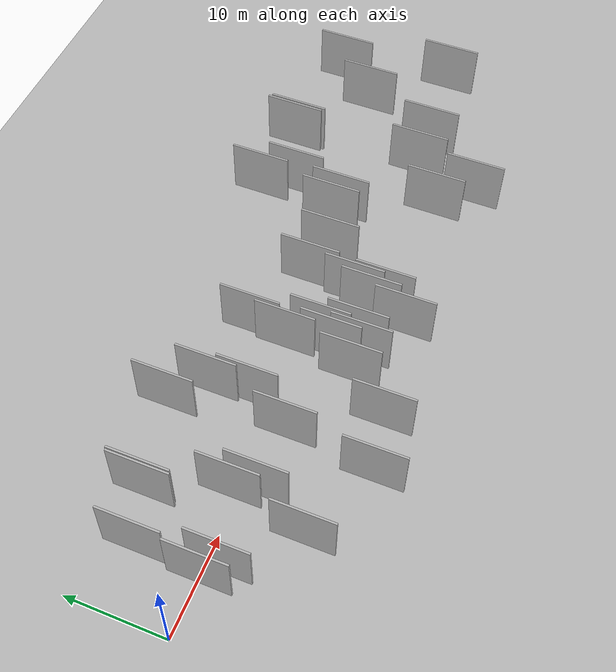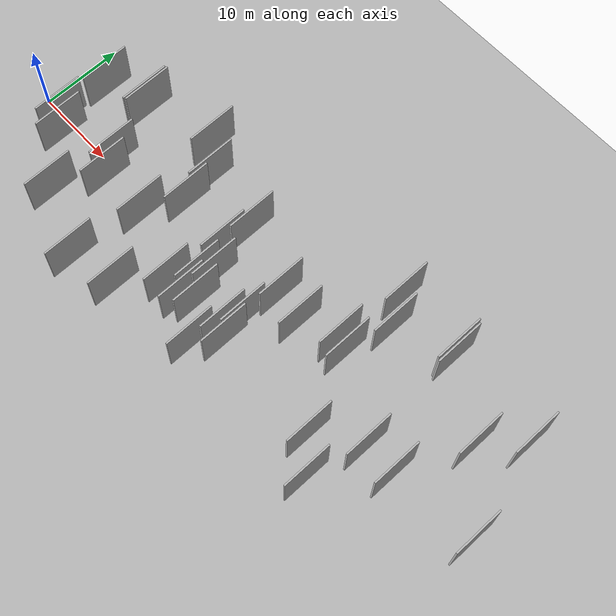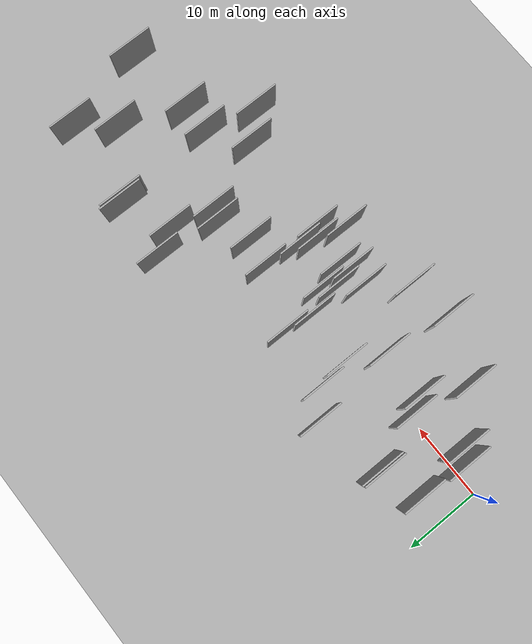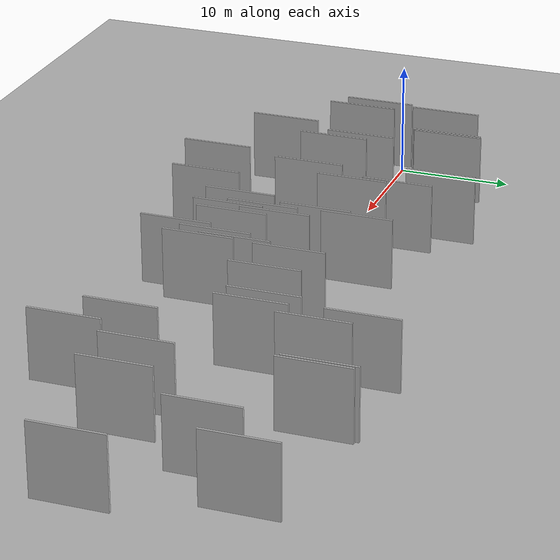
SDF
<?xml version="1.0" encoding="utf-8"?>

<sdf version="1.6">

   <world name="default">

      <gui fullscreen="0">

         <camera name="user_camera">

            <pose>-15 0 4.57585 0 0 0</pose>

            <view_controller>orbit</view_controller>

         </camera>

      </gui>

      <scene>

         <sky>

           <clouds>

             <speed>12</speed>

           </clouds>

         </sky>

         <ambient>0.4 0.4 0.4 1</ambient>

         <background>0.7 0.7 0.7 1</background>

         <shadows>1</shadows>

      </scene>

      <gravity>0 0 -9.8066</gravity>

      <magnetic_field>6e-06 2.3e-05 -4.2e-05</magnetic_field>

      <physics default="0" name="default_physics" type="ode">

         <ode>

            <solver>

               <type>quick</type>

               <iters>10</iters>

               <sor>1.0</sor>

               <use_dynamic_moi_rescaling>0</use_dynamic_moi_rescaling>

            </solver>

            <constraints>

               <cfm>0</cfm>

               <erp>0.2</erp>

               <contact_max_correcting_vel>100</contact_max_correcting_vel>

               <contact_surface_layer>0.001</contact_surface_layer>

            </constraints>

         </ode>

         <max_step_size>0.004</max_step_size>

         <real_time_factor>1</real_time_factor>

         <real_time_update_rate>250</real_time_update_rate>

      </physics>

      <light name="sun" type="directional">

         <cast_shadows>1</cast_shadows>

         <pose>0 0 10 0 0 0</pose>

         <diffuse>0.8 0.8 0.8 1</diffuse>

         <specular>0.2 0.2 0.2 1</specular>

         <attenuation>

            <range>1000</range>

            <constant>0.9</constant>

            <linear>0.01</linear>

            <quadratic>0.001</quadratic>

         </attenuation>

         <direction>-0.5 0.1 -0.9</direction>

      </light>

      <include>

         <name>ground_plane_1</name>

         <uri>model://HANNAS_ground_plane</uri>

         <pose>0 0 0  0 0 0</pose>

      </include>

      <include>

         <name>ground_plane_2</name>

         <uri>model://HANNAS_ground_plane</uri>

         <pose>100 0 0  0 0 0</pose>

      </include>

      <model name="HANNAS_wall_1">

         <static>1</static>

         <pose frame="">62.6837 5.5342 2.5 0.000000 0.000000 1.570796</pose>

         <link name="link">

            <pose frame="">0 0 3.00 0 0 0</pose>

            <collision name="collision">

               <geometry>

                  <box>

                     <size>6.00 0.2 6.00</size>

                  </box>

               </geometry>

               <max_contacts>10</max_contacts>

               <surface>

                  <contact>

                     <ode/>

                  </contact>

                  <bounce/>

                  <friction>

                     <torsional>

                        <ode/>

                     </torsional>

                     <ode/>

                  </friction>

               </surface>

            </collision>

            <visual name="visual">

               <cast_shadows>0</cast_shadows>

               <geometry>

                  <box>

                     <size>6.00 0.2 6.00</size>

                  </box>

               </geometry>

               <material>

                  <script>

                     <uri>model://HANNAS_wall/materials/scripts</uri>

                     <uri>model://HANNAS_wall/materials/textures</uri>

                     <name>vrc/HANNAS_wall</name>

                  </script>

               </material>

            </visual>

            <self_collide>0</self_collide>

            <enable_wind>0</enable_wind>

            <kinematic>0</kinematic>

         </link>

      </model>

      <model name="HANNAS_wall_2">

         <static>1</static>

         <pose frame="">11.1734 -7.3490 2.5 0.000000 0.000000 1.570796</pose>

         <link name="link">

            <pose frame="">0 0 3.00 0 0 0</pose>

            <collision name="collision">

               <geometry>

                  <box>

                     <size>6.00 0.2 6.00</size>

                  </box>

               </geometry>

               <max_contacts>10</max_contacts>

               <surface>

                  <contact>

                     <ode/>

                  </contact>

                  <bounce/>

                  <friction>

                     <torsional>

                        <ode/>

                     </torsional>

                     <ode/>

                  </friction>

               </surface>

            </collision>

            <visual name="visual">

               <cast_shadows>0</cast_shadows>

               <geometry>

                  <box>

                     <size>6.00 0.2 6.00</size>

                  </box>

               </geometry>

               <material>

                  <script>

                     <uri>model://HANNAS_wall/materials/scripts</uri>

                     <uri>model://HANNAS_wall/materials/textures</uri>

                     <name>vrc/HANNAS_wall</name>

                  </script>

               </material>

            </visual>

            <self_collide>0</self_collide>

            <enable_wind>0</enable_wind>

            <kinematic>0</kinematic>

         </link>

      </model>

      <model name="HANNAS_wall_3">

         <static>1</static>

         <pose frame="">29.5694 5.4243 2.5 0.000000 0.000000 1.570796</pose>

         <link name="link">

            <pose frame="">0 0 3.00 0 0 0</pose>

            <collision name="collision">

               <geometry>

                  <box>

                     <size>6.00 0.2 6.00</size>

                  </box>

               </geometry>

               <max_contacts>10</max_contacts>

               <surface>

                  <contact>

                     <ode/>

                  </contact>

                  <bounce/>

                  <friction>

                     <torsional>

                        <ode/>

                     </torsional>

                     <ode/>

                  </friction>

               </surface>

            </collision>

            <visual name="visual">

               <cast_shadows>0</cast_shadows>

               <geometry>

                  <box>

                     <size>6.00 0.2 6.00</size>

                  </box>

               </geometry>

               <material>

                  <script>

                     <uri>model://HANNAS_wall/materials/scripts</uri>

                     <uri>model://HANNAS_wall/materials/textures</uri>

                     <name>vrc/HANNAS_wall</name>

                  </script>

               </material>

            </visual>

            <self_collide>0</self_collide>

            <enable_wind>0</enable_wind>

            <kinematic>0</kinematic>

         </link>

      </model>

      <model name="HANNAS_wall_4">

         <static>1</static>

         <pose frame="">28.0579 -5.1532 2.5 0.000000 0.000000 1.570796</pose>

         <link name="link">

            <pose frame="">0 0 3.00 0 0 0</pose>

            <collision name="collision">

               <geometry>

                  <box>

                     <size>6.00 0.2 6.00</size>

                  </box>

               </geometry>

               <max_contacts>10</max_contacts>

               <surface>

                  <contact>

                     <ode/>

                  </contact>

                  <bounce/>

                  <friction>

                     <torsional>

                        <ode/>

                     </torsional>

                     <ode/>

                  </friction>

               </surface>

            </collision>

            <visual name="visual">

               <cast_shadows>0</cast_shadows>

               <geometry>

                  <box>

                     <size>6.00 0.2 6.00</size>

                  </box>

               </geometry>

               <material>

                  <script>

                     <uri>model://HANNAS_wall/materials/scripts</uri>

                     <uri>model://HANNAS_wall/materials/textures</uri>

                     <name>vrc/HANNAS_wall</name>

                  </script>

               </material>

            </visual>

            <self_collide>0</self_collide>

            <enable_wind>0</enable_wind>

            <kinematic>0</kinematic>

         </link>

      </model>

      <model name="HANNAS_wall_5">

         <static>1</static>

         <pose frame="">10.0824 7.1214 2.5 0.000000 0.000000 1.570796</pose>

         <link name="link">

            <pose frame="">0 0 3.00 0 0 0</pose>

            <collision name="collision">

               <geometry>

                  <box>

                     <size>6.00 0.2 6.00</size>

                  </box>

               </geometry>

               <max_contacts>10</max_contacts>

               <surface>

                  <contact>

                     <ode/>

                  </contact>

                  <bounce/>

                  <friction>

                     <torsional>

                        <ode/>

                     </torsional>

                     <ode/>

                  </friction>

               </surface>

            </collision>

            <visual name="visual">

               <cast_shadows>0</cast_shadows>

               <geometry>

                  <box>

                     <size>6.00 0.2 6.00</size>

                  </box>

               </geometry>

               <material>

                  <script>

                     <uri>model://HANNAS_wall/materials/scripts</uri>

                     <uri>model://HANNAS_wall/materials/textures</uri>

                     <name>vrc/HANNAS_wall</name>

                  </script>

               </material>

            </visual>

            <self_collide>0</self_collide>

            <enable_wind>0</enable_wind>

            <kinematic>0</kinematic>

         </link>

      </model>

      <model name="HANNAS_wall_6">

         <static>1</static>

         <pose frame="">37.2895 2.4847 2.5 0.000000 0.000000 1.570796</pose>

         <link name="link">

            <pose frame="">0 0 3.00 0 0 0</pose>

            <collision name="collision">

               <geometry>

                  <box>

                     <size>6.00 0.2 6.00</size>

                  </box>

               </geometry>

               <max_contacts>10</max_contacts>

               <surface>

                  <contact>

                     <ode/>

                  </contact>

                  <bounce/>

                  <friction>

                     <torsional>

                        <ode/>

                     </torsional>

                     <ode/>

                  </friction>

               </surface>

            </collision>

            <visual name="visual">

               <cast_shadows>0</cast_shadows>

               <geometry>

                  <box>

                     <size>6.00 0.2 6.00</size>

                  </box>

               </geometry>

               <material>

                  <script>

                     <uri>model://HANNAS_wall/materials/scripts</uri>

                     <uri>model://HANNAS_wall/materials/textures</uri>

                     <name>vrc/HANNAS_wall</name>

                  </script>

               </material>

            </visual>

            <self_collide>0</self_collide>

            <enable_wind>0</enable_wind>

            <kinematic>0</kinematic>

         </link>

      </model>

      <model name="HANNAS_wall_7">

         <static>1</static>

         <pose frame="">6.1963 -1.9086 2.5 0.000000 0.000000 1.570796</pose>

         <link name="link">

            <pose frame="">0 0 3.00 0 0 0</pose>

            <collision name="collision">

               <geometry>

                  <box>

                     <size>6.00 0.2 6.00</size>

                  </box>

               </geometry>

               <max_contacts>10</max_contacts>

               <surface>

                  <contact>

                     <ode/>

                  </contact>

                  <bounce/>

                  <friction>

                     <torsional>

                        <ode/>

                     </torsional>

                     <ode/>

                  </friction>

               </surface>

            </collision>

            <visual name="visual">

               <cast_shadows>0</cast_shadows>

               <geometry>

                  <box>

                     <size>6.00 0.2 6.00</size>

                  </box>

               </geometry>

               <material>

                  <script>

                     <uri>model://HANNAS_wall/materials/scripts</uri>

                     <uri>model://HANNAS_wall/materials/textures</uri>

                     <name>vrc/HANNAS_wall</name>

                  </script>

               </material>

            </visual>

            <self_collide>0</self_collide>

            <enable_wind>0</enable_wind>

            <kinematic>0</kinematic>

         </link>

      </model>

      <model name="HANNAS_wall_8">

         <static>1</static>

         <pose frame="">59.2229 -2.5464 2.5 0.000000 0.000000 1.570796</pose>

         <link name="link">

            <pose frame="">0 0 3.00 0 0 0</pose>

            <collision name="collision">

               <geometry>

                  <box>

                     <size>6.00 0.2 6.00</size>

                  </box>

               </geometry>

               <max_contacts>10</max_contacts>

               <surface>

                  <contact>

                     <ode/>

                  </contact>

                  <bounce/>

                  <friction>

                     <torsional>

                        <ode/>

                     </torsional>

                     <ode/>

                  </friction>

               </surface>

            </collision>

            <visual name="visual">

               <cast_shadows>0</cast_shadows>

               <geometry>

                  <box>

                     <size>6.00 0.2 6.00</size>

                  </box>

               </geometry>

               <material>

                  <script>

                     <uri>model://HANNAS_wall/materials/scripts</uri>

                     <uri>model://HANNAS_wall/materials/textures</uri>

                     <name>vrc/HANNAS_wall</name>

                  </script>

               </material>

            </visual>

            <self_collide>0</self_collide>

            <enable_wind>0</enable_wind>

            <kinematic>0</kinematic>

         </link>

      </model>

      <model name="HANNAS_wall_9">

         <static>1</static>

         <pose frame="">30.5325 -5.2615 2.5 0.000000 0.000000 1.570796</pose>

         <link name="link">

            <pose frame="">0 0 3.00 0 0 0</pose>

            <collision name="collision">

               <geometry>

                  <box>

                     <size>6.00 0.2 6.00</size>

                  </box>

               </geometry>

               <max_contacts>10</max_contacts>

               <surface>

                  <contact>

                     <ode/>

                  </contact>

                  <bounce/>

                  <friction>

                     <torsional>

                        <ode/>

                     </torsional>

                     <ode/>

                  </friction>

               </surface>

            </collision>

            <visual name="visual">

               <cast_shadows>0</cast_shadows>

               <geometry>

                  <box>

                     <size>6.00 0.2 6.00</size>

                  </box>

               </geometry>

               <material>

                  <script>

                     <uri>model://HANNAS_wall/materials/scripts</uri>

                     <uri>model://HANNAS_wall/materials/textures</uri>

                     <name>vrc/HANNAS_wall</name>

                  </script>

               </material>

            </visual>

            <self_collide>0</self_collide>

            <enable_wind>0</enable_wind>

            <kinematic>0</kinematic>

         </link>

      </model>

      <model name="HANNAS_wall_10">

         <static>1</static>

         <pose frame="">18.9515 9.2021 2.5 0.000000 0.000000 1.570796</pose>

         <link name="link">

            <pose frame="">0 0 3.00 0 0 0</pose>

            <collision name="collision">

               <geometry>

                  <box>

                     <size>6.00 0.2 6.00</size>

                  </box>

               </geometry>

               <max_contacts>10</max_contacts>

               <surface>

                  <contact>

                     <ode/>

                  </contact>

                  <bounce/>

                  <friction>

                     <torsional>

                        <ode/>

                     </torsional>

                     <ode/>

                  </friction>

               </surface>

            </collision>

            <visual name="visual">

               <cast_shadows>0</cast_shadows>

               <geometry>

                  <box>

                     <size>6.00 0.2 6.00</size>

                  </box>

               </geometry>

               <material>

                  <script>

                     <uri>model://HANNAS_wall/materials/scripts</uri>

                     <uri>model://HANNAS_wall/materials/textures</uri>

                     <name>vrc/HANNAS_wall</name>

                  </script>

               </material>

            </visual>

            <self_collide>0</self_collide>

            <enable_wind>0</enable_wind>

            <kinematic>0</kinematic>

         </link>

      </model>

      <model name="HANNAS_wall_11">

         <static>1</static>

         <pose frame="">5.1403 5.5051 2.5 0.000000 0.000000 1.570796</pose>

         <link name="link">

            <pose frame="">0 0 3.00 0 0 0</pose>

            <collision name="collision">

               <geometry>

                  <box>

                     <size>6.00 0.2 6.00</size>

                  </box>

               </geometry>

               <max_contacts>10</max_contacts>

               <surface>

                  <contact>

                     <ode/>

                  </contact>

                  <bounce/>

                  <friction>

                     <torsional>

                        <ode/>

                     </torsional>

                     <ode/>

                  </friction>

               </surface>

            </collision>

            <visual name="visual">

               <cast_shadows>0</cast_shadows>

               <geometry>

                  <box>

                     <size>6.00 0.2 6.00</size>

                  </box>

               </geometry>

               <material>

                  <script>

                     <uri>model://HANNAS_wall/materials/scripts</uri>

                     <uri>model://HANNAS_wall/materials/textures</uri>

                     <name>vrc/HANNAS_wall</name>

                  </script>

               </material>

            </visual>

            <self_collide>0</self_collide>

            <enable_wind>0</enable_wind>

            <kinematic>0</kinematic>

         </link>

      </model>

      <model name="HANNAS_wall_12">

         <static>1</static>

         <pose frame="">22.3314 2.5402 2.5 0.000000 0.000000 1.570796</pose>

         <link name="link">

            <pose frame="">0 0 3.00 0 0 0</pose>

            <collision name="collision">

               <geometry>

                  <box>

                     <size>6.00 0.2 6.00</size>

                  </box>

               </geometry>

               <max_contacts>10</max_contacts>

               <surface>

                  <contact>

                     <ode/>

                  </contact>

                  <bounce/>

                  <friction>

                     <torsional>

                        <ode/>

                     </torsional>

                     <ode/>

                  </friction>

               </surface>

            </collision>

            <visual name="visual">

               <cast_shadows>0</cast_shadows>

               <geometry>

                  <box>

                     <size>6.00 0.2 6.00</size>

                  </box>

               </geometry>

               <material>

                  <script>

                     <uri>model://HANNAS_wall/materials/scripts</uri>

                     <uri>model://HANNAS_wall/materials/textures</uri>

                     <name>vrc/HANNAS_wall</name>

                  </script>

               </material>

            </visual>

            <self_collide>0</self_collide>

            <enable_wind>0</enable_wind>

            <kinematic>0</kinematic>

         </link>

      </model>

      <model name="HANNAS_wall_13">

         <static>1</static>

         <pose frame="">54.7418 10.7669 2.5 0.000000 0.000000 1.570796</pose>

         <link name="link">

            <pose frame="">0 0 3.00 0 0 0</pose>

            <collision name="collision">

               <geometry>

                  <box>

                     <size>6.00 0.2 6.00</size>

                  </box>

               </geometry>

               <max_contacts>10</max_contacts>

               <surface>

                  <contact>

                     <ode/>

                  </contact>

                  <bounce/>

                  <friction>

                     <torsional>

                        <ode/>

                     </torsional>

                     <ode/>

                  </friction>

               </surface>

            </collision>

            <visual name="visual">

               <cast_shadows>0</cast_shadows>

               <geometry>

                  <box>

                     <size>6.00 0.2 6.00</size>

                  </box>

               </geometry>

               <material>

                  <script>

                     <uri>model://HANNAS_wall/materials/scripts</uri>

                     <uri>model://HANNAS_wall/materials/textures</uri>

                     <name>vrc/HANNAS_wall</name>

                  </script>

               </material>

            </visual>

            <self_collide>0</self_collide>

            <enable_wind>0</enable_wind>

            <kinematic>0</kinematic>

         </link>

      </model>

      <model name="HANNAS_wall_14">

         <static>1</static>

         <pose frame="">20.1000 -2.0433 2.5 0.000000 0.000000 1.570796</pose>

         <link name="link">

            <pose frame="">0 0 3.00 0 0 0</pose>

            <collision name="collision">

               <geometry>

                  <box>

                     <size>6.00 0.2 6.00</size>

                  </box>

               </geometry>

               <max_contacts>10</max_contacts>

               <surface>

                  <contact>

                     <ode/>

                  </contact>

                  <bounce/>

                  <friction>

                     <torsional>

                        <ode/>

                     </torsional>

                     <ode/>

                  </friction>

               </surface>

            </collision>

            <visual name="visual">

               <cast_shadows>0</cast_shadows>

               <geometry>

                  <box>

                     <size>6.00 0.2 6.00</size>

                  </box>

               </geometry>

               <material>

                  <script>

                     <uri>model://HANNAS_wall/materials/scripts</uri>

                     <uri>model://HANNAS_wall/materials/textures</uri>

                     <name>vrc/HANNAS_wall</name>

                  </script>

               </material>

            </visual>

            <self_collide>0</self_collide>

            <enable_wind>0</enable_wind>

            <kinematic>0</kinematic>

         </link>

      </model>

      <model name="HANNAS_wall_15">

         <static>1</static>

         <pose frame="">4.6762 -0.7425 2.5 0.000000 0.000000 1.570796</pose>

         <link name="link">

            <pose frame="">0 0 3.00 0 0 0</pose>

            <collision name="collision">

               <geometry>

                  <box>

                     <size>6.00 0.2 6.00</size>

                  </box>

               </geometry>

               <max_contacts>10</max_contacts>

               <surface>

                  <contact>

                     <ode/>

                  </contact>

                  <bounce/>

                  <friction>

                     <torsional>

                        <ode/>

                     </torsional>

                     <ode/>

                  </friction>

               </surface>

            </collision>

            <visual name="visual">

               <cast_shadows>0</cast_shadows>

               <geometry>

                  <box>

                     <size>6.00 0.2 6.00</size>

                  </box>

               </geometry>

               <material>

                  <script>

                     <uri>model://HANNAS_wall/materials/scripts</uri>

                     <uri>model://HANNAS_wall/materials/textures</uri>

                     <name>vrc/HANNAS_wall</name>

                  </script>

               </material>

            </visual>

            <self_collide>0</self_collide>

            <enable_wind>0</enable_wind>

            <kinematic>0</kinematic>

         </link>

      </model>

      <model name="HANNAS_wall_16">

         <static>1</static>

         <pose frame="">45.2181 3.4160 2.5 0.000000 0.000000 1.570796</pose>

         <link name="link">

            <pose frame="">0 0 3.00 0 0 0</pose>

            <collision name="collision">

               <geometry>

                  <box>

                     <size>6.00 0.2 6.00</size>

                  </box>

               </geometry>

               <max_contacts>10</max_contacts>

               <surface>

                  <contact>

                     <ode/>

                  </contact>

                  <bounce/>

                  <friction>

                     <torsional>

                        <ode/>

                     </torsional>

                     <ode/>

                  </friction>

               </surface>

            </collision>

            <visual name="visual">

               <cast_shadows>0</cast_shadows>

               <geometry>

                  <box>

                     <size>6.00 0.2 6.00</size>

                  </box>

               </geometry>

               <material>

                  <script>

                     <uri>model://HANNAS_wall/materials/scripts</uri>

                     <uri>model://HANNAS_wall/materials/textures</uri>

                     <name>vrc/HANNAS_wall</name>

                  </script>

               </material>

            </visual>

            <self_collide>0</self_collide>

            <enable_wind>0</enable_wind>

            <kinematic>0</kinematic>

         </link>

      </model>

      <model name="HANNAS_wall_17">

         <static>1</static>

         <pose frame="">36.7117 -2.2948 2.5 0.000000 0.000000 1.570796</pose>

         <link name="link">

            <pose frame="">0 0 3.00 0 0 0</pose>

            <collision name="collision">

               <geometry>

                  <box>

                     <size>6.00 0.2 6.00</size>

                  </box>

               </geometry>

               <max_contacts>10</max_contacts>

               <surface>

                  <contact>

                     <ode/>

                  </contact>

                  <bounce/>

                  <friction>

                     <torsional>

                        <ode/>

                     </torsional>

                     <ode/>

                  </friction>

               </surface>

            </collision>

            <visual name="visual">

               <cast_shadows>0</cast_shadows>

               <geometry>

                  <box>

                     <size>6.00 0.2 6.00</size>

                  </box>

               </geometry>

               <material>

                  <script>

                     <uri>model://HANNAS_wall/materials/scripts</uri>

                     <uri>model://HANNAS_wall/materials/textures</uri>

                     <name>vrc/HANNAS_wall</name>

                  </script>

               </material>

            </visual>

            <self_collide>0</self_collide>

            <enable_wind>0</enable_wind>

            <kinematic>0</kinematic>

         </link>

      </model>

      <model name="HANNAS_wall_18">

         <static>1</static>

         <pose frame="">40.9325 1.8333 2.5 0.000000 0.000000 1.570796</pose>

         <link name="link">

            <pose frame="">0 0 3.00 0 0 0</pose>

            <collision name="collision">

               <geometry>

                  <box>

                     <size>6.00 0.2 6.00</size>

                  </box>

               </geometry>

               <max_contacts>10</max_contacts>

               <surface>

                  <contact>

                     <ode/>

                  </contact>

                  <bounce/>

                  <friction>

                     <torsional>

                        <ode/>

                     </torsional>

                     <ode/>

                  </friction>

               </surface>

            </collision>

            <visual name="visual">

               <cast_shadows>0</cast_shadows>

               <geometry>

                  <box>

                     <size>6.00 0.2 6.00</size>

                  </box>

               </geometry>

               <material>

                  <script>

                     <uri>model://HANNAS_wall/materials/scripts</uri>

                     <uri>model://HANNAS_wall/materials/textures</uri>

                     <name>vrc/HANNAS_wall</name>

                  </script>

               </material>

            </visual>

            <self_collide>0</self_collide>

            <enable_wind>0</enable_wind>

            <kinematic>0</kinematic>

         </link>

      </model>

      <model name="HANNAS_wall_19">

         <static>1</static>

         <pose frame="">53.5530 -9.0927 2.5 0.000000 0.000000 1.570796</pose>

         <link name="link">

            <pose frame="">0 0 3.00 0 0 0</pose>

            <collision name="collision">

               <geometry>

                  <box>

                     <size>6.00 0.2 6.00</size>

                  </box>

               </geometry>

               <max_contacts>10</max_contacts>

               <surface>

                  <contact>

                     <ode/>

                  </contact>

                  <bounce/>

                  <friction>

                     <torsional>

                        <ode/>

                     </torsional>

                     <ode/>

                  </friction>

               </surface>

            </collision>

            <visual name="visual">

               <cast_shadows>0</cast_shadows>

               <geometry>

                  <box>

                     <size>6.00 0.2 6.00</size>

                  </box>

               </geometry>

               <material>

                  <script>

                     <uri>model://HANNAS_wall/materials/scripts</uri>

                     <uri>model://HANNAS_wall/materials/textures</uri>

                     <name>vrc/HANNAS_wall</name>

                  </script>

               </material>

            </visual>

            <self_collide>0</self_collide>

            <enable_wind>0</enable_wind>

            <kinematic>0</kinematic>

         </link>

      </model>

      <model name="HANNAS_wall_20">

         <static>1</static>

         <pose frame="">48.0942 8.3463 2.5 0.000000 0.000000 1.570796</pose>

         <link name="link">

            <pose frame="">0 0 3.00 0 0 0</pose>

            <collision name="collision">

               <geometry>

                  <box>

                     <size>6.00 0.2 6.00</size>

                  </box>

               </geometry>

               <max_contacts>10</max_contacts>

               <surface>

                  <contact>

                     <ode/>

                  </contact>

                  <bounce/>

                  <friction>

                     <torsional>

                        <ode/>

                     </torsional>

                     <ode/>

                  </friction>

               </surface>

            </collision>

            <visual name="visual">

               <cast_shadows>0</cast_shadows>

               <geometry>

                  <box>

                     <size>6.00 0.2 6.00</size>

                  </box>

               </geometry>

               <material>

                  <script>

                     <uri>model://HANNAS_wall/materials/scripts</uri>

                     <uri>model://HANNAS_wall/materials/textures</uri>

                     <name>vrc/HANNAS_wall</name>

                  </script>

               </material>

            </visual>

            <self_collide>0</self_collide>

            <enable_wind>0</enable_wind>

            <kinematic>0</kinematic>

         </link>

      </model>

      <model name="HANNAS_wall_21">

         <static>1</static>

         <pose frame="">21.9019 6.3595 2.5 0.000000 0.000000 1.570796</pose>

         <link name="link">

            <pose frame="">0 0 3.00 0 0 0</pose>

            <collision name="collision">

               <geometry>

                  <box>

                     <size>6.00 0.2 6.00</size>

                  </box>

               </geometry>

               <max_contacts>10</max_contacts>

               <surface>

                  <contact>

                     <ode/>

                  </contact>

                  <bounce/>

                  <friction>

                     <torsional>

                        <ode/>

                     </torsional>

                     <ode/>

                  </friction>

               </surface>

            </collision>

            <visual name="visual">

               <cast_shadows>0</cast_shadows>

               <geometry>

                  <box>

                     <size>6.00 0.2 6.00</size>

                  </box>

               </geometry>

               <material>

                  <script>

                     <uri>model://HANNAS_wall/materials/scripts</uri>

                     <uri>model://HANNAS_wall/materials/textures</uri>

                     <name>vrc/HANNAS_wall</name>

                  </script>

               </material>

            </visual>

            <self_collide>0</self_collide>

            <enable_wind>0</enable_wind>

            <kinematic>0</kinematic>

         </link>

      </model>

      <model name="HANNAS_wall_22">

         <static>1</static>

         <pose frame="">34.9717 -7.9826 2.5 0.000000 0.000000 1.570796</pose>

         <link name="link">

            <pose frame="">0 0 3.00 0 0 0</pose>

            <collision name="collision">

               <geometry>

                  <box>

                     <size>6.00 0.2 6.00</size>

                  </box>

               </geometry>

               <max_contacts>10</max_contacts>

               <surface>

                  <contact>

                     <ode/>

                  </contact>

                  <bounce/>

                  <friction>

                     <torsional>

                        <ode/>

                     </torsional>

                     <ode/>

                  </friction>

               </surface>

            </collision>

            <visual name="visual">

               <cast_shadows>0</cast_shadows>

               <geometry>

                  <box>

                     <size>6.00 0.2 6.00</size>

                  </box>

               </geometry>

               <material>

                  <script>

                     <uri>model://HANNAS_wall/materials/scripts</uri>

                     <uri>model://HANNAS_wall/materials/textures</uri>

                     <name>vrc/HANNAS_wall</name>

                  </script>

               </material>

            </visual>

            <self_collide>0</self_collide>

            <enable_wind>0</enable_wind>

            <kinematic>0</kinematic>

         </link>

      </model>

      <model name="HANNAS_wall_23">

         <static>1</static>

         <pose frame="">54.3954 11.0584 2.5 0.000000 0.000000 1.570796</pose>

         <link name="link">

            <pose frame="">0 0 3.00 0 0 0</pose>

            <collision name="collision">

               <geometry>

                  <box>

                     <size>6.00 0.2 6.00</size>

                  </box>

               </geometry>

               <max_contacts>10</max_contacts>

               <surface>

                  <contact>

                     <ode/>

                  </contact>

                  <bounce/>

                  <friction>

                     <torsional>

                        <ode/>

                     </torsional>

                     <ode/>

                  </friction>

               </surface>

            </collision>

            <visual name="visual">

               <cast_shadows>0</cast_shadows>

               <geometry>

                  <box>

                     <size>6.00 0.2 6.00</size>

                  </box>

               </geometry>

               <material>

                  <script>

                     <uri>model://HANNAS_wall/materials/scripts</uri>

                     <uri>model://HANNAS_wall/materials/textures</uri>

                     <name>vrc/HANNAS_wall</name>

                  </script>

               </material>

            </visual>

            <self_collide>0</self_collide>

            <enable_wind>0</enable_wind>

            <kinematic>0</kinematic>

         </link>

      </model>

      <model name="HANNAS_wall_24">

         <static>1</static>

         <pose frame="">18.9407 -10.7676 2.5 0.000000 0.000000 1.570796</pose>

         <link name="link">

            <pose frame="">0 0 3.00 0 0 0</pose>

            <collision name="collision">

               <geometry>

                  <box>

                     <size>6.00 0.2 6.00</size>

                  </box>

               </geometry>

               <max_contacts>10</max_contacts>

               <surface>

                  <contact>

                     <ode/>

                  </contact>

                  <bounce/>

                  <friction>

                     <torsional>

                        <ode/>

                     </torsional>

                     <ode/>

                  </friction>

               </surface>

            </collision>

            <visual name="visual">

               <cast_shadows>0</cast_shadows>

               <geometry>

                  <box>

                     <size>6.00 0.2 6.00</size>

                  </box>

               </geometry>

               <material>

                  <script>

                     <uri>model://HANNAS_wall/materials/scripts</uri>

                     <uri>model://HANNAS_wall/materials/textures</uri>

                     <name>vrc/HANNAS_wall</name>

                  </script>

               </material>

            </visual>

            <self_collide>0</self_collide>

            <enable_wind>0</enable_wind>

            <kinematic>0</kinematic>

         </link>

      </model>

      <model name="HANNAS_wall_25">

         <static>1</static>

         <pose frame="">10.3698 7.2490 2.5 0.000000 0.000000 1.570796</pose>

         <link name="link">

            <pose frame="">0 0 3.00 0 0 0</pose>

            <collision name="collision">

               <geometry>

                  <box>

                     <size>6.00 0.2 6.00</size>

                  </box>

               </geometry>

               <max_contacts>10</max_contacts>

               <surface>

                  <contact>

                     <ode/>

                  </contact>

                  <bounce/>

                  <friction>

                     <torsional>

                        <ode/>

                     </torsional>

                     <ode/>

                  </friction>

               </surface>

            </collision>

            <visual name="visual">

               <cast_shadows>0</cast_shadows>

               <geometry>

                  <box>

                     <size>6.00 0.2 6.00</size>

                  </box>

               </geometry>

               <material>

                  <script>

                     <uri>model://HANNAS_wall/materials/scripts</uri>

                     <uri>model://HANNAS_wall/materials/textures</uri>

                     <name>vrc/HANNAS_wall</name>

                  </script>

               </material>

            </visual>

            <self_collide>0</self_collide>

            <enable_wind>0</enable_wind>

            <kinematic>0</kinematic>

         </link>

      </model>

      <model name="HANNAS_wall_26">

         <static>1</static>

         <pose frame="">29.1221 1.7195 2.5 0.000000 0.000000 1.570796</pose>

         <link name="link">

            <pose frame="">0 0 3.00 0 0 0</pose>

            <collision name="collision">

               <geometry>

                  <box>

                     <size>6.00 0.2 6.00</size>

                  </box>

               </geometry>

               <max_contacts>10</max_contacts>

               <surface>

                  <contact>

                     <ode/>

                  </contact>

                  <bounce/>

                  <friction>

                     <torsional>

                        <ode/>

                     </torsional>

                     <ode/>

                  </friction>

               </surface>

            </collision>

            <visual name="visual">

               <cast_shadows>0</cast_shadows>

               <geometry>

                  <box>

                     <size>6.00 0.2 6.00</size>

                  </box>

               </geometry>

               <material>

                  <script>

                     <uri>model://HANNAS_wall/materials/scripts</uri>

                     <uri>model://HANNAS_wall/materials/textures</uri>

                     <name>vrc/HANNAS_wall</name>

                  </script>

               </material>

            </visual>

            <self_collide>0</self_collide>

            <enable_wind>0</enable_wind>

            <kinematic>0</kinematic>

         </link>

      </model>

      <model name="HANNAS_wall_27">

         <static>1</static>

         <pose frame="">12.8169 0.1383 2.5 0.000000 0.000000 1.570796</pose>

         <link name="link">

            <pose frame="">0 0 3.00 0 0 0</pose>

            <collision name="collision">

               <geometry>

                  <box>

                     <size>6.00 0.2 6.00</size>

                  </box>

               </geometry>

               <max_contacts>10</max_contacts>

               <surface>

                  <contact>

                     <ode/>

                  </contact>

                  <bounce/>

                  <friction>

                     <torsional>

                        <ode/>

                     </torsional>

                     <ode/>

                  </friction>

               </surface>

            </collision>

            <visual name="visual">

               <cast_shadows>0</cast_shadows>

               <geometry>

                  <box>

                     <size>6.00 0.2 6.00</size>

                  </box>

               </geometry>

               <material>

                  <script>

                     <uri>model://HANNAS_wall/materials/scripts</uri>

                     <uri>model://HANNAS_wall/materials/textures</uri>

                     <name>vrc/HANNAS_wall</name>

                  </script>

               </material>

            </visual>

            <self_collide>0</self_collide>

            <enable_wind>0</enable_wind>

            <kinematic>0</kinematic>

         </link>

      </model>

      <model name="HANNAS_wall_28">

         <static>1</static>

         <pose frame="">66.3520 9.6277 2.5 0.000000 0.000000 1.570796</pose>

         <link name="link">

            <pose frame="">0 0 3.00 0 0 0</pose>

            <collision name="collision">

               <geometry>

                  <box>

                     <size>6.00 0.2 6.00</size>

                  </box>

               </geometry>

               <max_contacts>10</max_contacts>

               <surface>

                  <contact>

                     <ode/>

                  </contact>

                  <bounce/>

                  <friction>

                     <torsional>

                        <ode/>

                     </torsional>

                     <ode/>

                  </friction>

               </surface>

            </collision>

            <visual name="visual">

               <cast_shadows>0</cast_shadows>

               <geometry>

                  <box>

                     <size>6.00 0.2 6.00</size>

                  </box>

               </geometry>

               <material>

                  <script>

                     <uri>model://HANNAS_wall/materials/scripts</uri>

                     <uri>model://HANNAS_wall/materials/textures</uri>

                     <name>vrc/HANNAS_wall</name>

                  </script>

               </material>

            </visual>

            <self_collide>0</self_collide>

            <enable_wind>0</enable_wind>

            <kinematic>0</kinematic>

         </link>

      </model>

      <model name="HANNAS_wall_29">

         <static>1</static>

         <pose frame="">30.9515 -1.0877 2.5 0.000000 0.000000 1.570796</pose>

         <link name="link">

            <pose frame="">0 0 3.00 0 0 0</pose>

            <collision name="collision">

               <geometry>

                  <box>

                     <size>6.00 0.2 6.00</size>

                  </box>

               </geometry>

               <max_contacts>10</max_contacts>

               <surface>

                  <contact>

                     <ode/>

                  </contact>

                  <bounce/>

                  <friction>

                     <torsional>

                        <ode/>

                     </torsional>

                     <ode/>

                  </friction>

               </surface>

            </collision>

            <visual name="visual">

               <cast_shadows>0</cast_shadows>

               <geometry>

                  <box>

                     <size>6.00 0.2 6.00</size>

                  </box>

               </geometry>

               <material>

                  <script>

                     <uri>model://HANNAS_wall/materials/scripts</uri>

                     <uri>model://HANNAS_wall/materials/textures</uri>

                     <name>vrc/HANNAS_wall</name>

                  </script>

               </material>

            </visual>

            <self_collide>0</self_collide>

            <enable_wind>0</enable_wind>

            <kinematic>0</kinematic>

         </link>

      </model>

      <model name="HANNAS_wall_30">

         <static>1</static>

         <pose frame="">24.5167 -9.6119 2.5 0.000000 0.000000 1.570796</pose>

         <link name="link">

            <pose frame="">0 0 3.00 0 0 0</pose>

            <collision name="collision">

               <geometry>

                  <box>

                     <size>6.00 0.2 6.00</size>

                  </box>

               </geometry>

               <max_contacts>10</max_contacts>

               <surface>

                  <contact>

                     <ode/>

                  </contact>

                  <bounce/>

                  <friction>

                     <torsional>

                        <ode/>

                     </torsional>

                     <ode/>

                  </friction>

               </surface>

            </collision>

            <visual name="visual">

               <cast_shadows>0</cast_shadows>

               <geometry>

                  <box>

                     <size>6.00 0.2 6.00</size>

                  </box>

               </geometry>

               <material>

                  <script>

                     <uri>model://HANNAS_wall/materials/scripts</uri>

                     <uri>model://HANNAS_wall/materials/textures</uri>

                     <name>vrc/HANNAS_wall</name>

                  </script>

               </material>

            </visual>

            <self_collide>0</self_collide>

            <enable_wind>0</enable_wind>

            <kinematic>0</kinematic>

         </link>

      </model>

      <model name="HANNAS_wall_31">

         <static>1</static>

         <pose frame="">31.8772 -4.4450 2.5 0.000000 0.000000 1.570796</pose>

         <link name="link">

            <pose frame="">0 0 3.00 0 0 0</pose>

            <collision name="collision">

               <geometry>

                  <box>

                     <size>6.00 0.2 6.00</size>

                  </box>

               </geometry>

               <max_contacts>10</max_contacts>

               <surface>

                  <contact>

                     <ode/>

                  </contact>

                  <bounce/>

                  <friction>

                     <torsional>

                        <ode/>

                     </torsional>

                     <ode/>

                  </friction>

               </surface>

            </collision>

            <visual name="visual">

               <cast_shadows>0</cast_shadows>

               <geometry>

                  <box>

                     <size>6.00 0.2 6.00</size>

                  </box>

               </geometry>

               <material>

                  <script>

                     <uri>model://HANNAS_wall/materials/scripts</uri>

                     <uri>model://HANNAS_wall/materials/textures</uri>

                     <name>vrc/HANNAS_wall</name>

                  </script>

               </material>

            </visual>

            <self_collide>0</self_collide>

            <enable_wind>0</enable_wind>

            <kinematic>0</kinematic>

         </link>

      </model>

      <model name="HANNAS_wall_32">

         <static>1</static>

         <pose frame="">69.1817 -1.5828 2.5 0.000000 0.000000 1.570796</pose>

         <link name="link">

            <pose frame="">0 0 3.00 0 0 0</pose>

            <collision name="collision">

               <geometry>

                  <box>

                     <size>6.00 0.2 6.00</size>

                  </box>

               </geometry>

               <max_contacts>10</max_contacts>

               <surface>

                  <contact>

                     <ode/>

                  </contact>

                  <bounce/>

                  <friction>

                     <torsional>

                        <ode/>

                     </torsional>

                     <ode/>

                  </friction>

               </surface>

            </collision>

            <visual name="visual">

               <cast_shadows>0</cast_shadows>

               <geometry>

                  <box>

                     <size>6.00 0.2 6.00</size>

                  </box>

               </geometry>

               <material>

                  <script>

                     <uri>model://HANNAS_wall/materials/scripts</uri>

                     <uri>model://HANNAS_wall/materials/textures</uri>

                     <name>vrc/HANNAS_wall</name>

                  </script>

               </material>

            </visual>

            <self_collide>0</self_collide>

            <enable_wind>0</enable_wind>

            <kinematic>0</kinematic>

         </link>

      </model>

      <model name="HANNAS_wall_33">

         <static>1</static>

         <pose frame="">29.8918 -2.5258 2.5 0.000000 0.000000 1.570796</pose>

         <link name="link">

            <pose frame="">0 0 3.00 0 0 0</pose>

            <collision name="collision">

               <geometry>

                  <box>

                     <size>6.00 0.2 6.00</size>

                  </box>

               </geometry>

               <max_contacts>10</max_contacts>

               <surface>

                  <contact>

                     <ode/>

                  </contact>

                  <bounce/>

                  <friction>

                     <torsional>

                        <ode/>

                     </torsional>

                     <ode/>

                  </friction>

               </surface>

            </collision>

            <visual name="visual">

               <cast_shadows>0</cast_shadows>

               <geometry>

                  <box>

                     <size>6.00 0.2 6.00</size>

                  </box>

               </geometry>

               <material>

                  <script>

                     <uri>model://HANNAS_wall/materials/scripts</uri>

                     <uri>model://HANNAS_wall/materials/textures</uri>

                     <name>vrc/HANNAS_wall</name>

                  </script>

               </material>

            </visual>

            <self_collide>0</self_collide>

            <enable_wind>0</enable_wind>

            <kinematic>0</kinematic>

         </link>

      </model>

      <model name="HANNAS_wall_34">

         <static>1</static>

         <pose frame="">13.9001 -1.9796 2.5 0.000000 0.000000 1.570796</pose>

         <link name="link">

            <pose frame="">0 0 3.00 0 0 0</pose>

            <collision name="collision">

               <geometry>

                  <box>

                     <size>6.00 0.2 6.00</size>

                  </box>

               </geometry>

               <max_contacts>10</max_contacts>

               <surface>

                  <contact>

                     <ode/>

                  </contact>

                  <bounce/>

                  <friction>

                     <torsional>

                        <ode/>

                     </torsional>

                     <ode/>

                  </friction>

               </surface>

            </collision>

            <visual name="visual">

               <cast_shadows>0</cast_shadows>

               <geometry>

                  <box>

                     <size>6.00 0.2 6.00</size>

                  </box>

               </geometry>

               <material>

                  <script>

                     <uri>model://HANNAS_wall/materials/scripts</uri>

                     <uri>model://HANNAS_wall/materials/textures</uri>

                     <name>vrc/HANNAS_wall</name>

                  </script>

               </material>

            </visual>

            <self_collide>0</self_collide>

            <enable_wind>0</enable_wind>

            <kinematic>0</kinematic>

         </link>

      </model>

      <model name="HANNAS_wall_35">

         <static>1</static>

         <pose frame="">37.0901 -5.2274 2.5 0.000000 0.000000 1.570796</pose>

         <link name="link">

            <pose frame="">0 0 3.00 0 0 0</pose>

            <collision name="collision">

               <geometry>

                  <box>

                     <size>6.00 0.2 6.00</size>

                  </box>

               </geometry>

               <max_contacts>10</max_contacts>

               <surface>

                  <contact>

                     <ode/>

                  </contact>

                  <bounce/>

                  <friction>

                     <torsional>

                        <ode/>

                     </torsional>

                     <ode/>

                  </friction>

               </surface>

            </collision>

            <visual name="visual">

               <cast_shadows>0</cast_shadows>

               <geometry>

                  <box>

                     <size>6.00 0.2 6.00</size>

                  </box>

               </geometry>

               <material>

                  <script>

                     <uri>model://HANNAS_wall/materials/scripts</uri>

                     <uri>model://HANNAS_wall/materials/textures</uri>

                     <name>vrc/HANNAS_wall</name>

                  </script>

               </material>

            </visual>

            <self_collide>0</self_collide>

            <enable_wind>0</enable_wind>

            <kinematic>0</kinematic>

         </link>

      </model>

      <model name="HANNAS_wall_36">

         <static>1</static>

         <pose frame="">46.6888 2.9216 2.5 0.000000 0.000000 1.570796</pose>

         <link name="link">

            <pose frame="">0 0 3.00 0 0 0</pose>

            <collision name="collision">

               <geometry>

                  <box>

                     <size>6.00 0.2 6.00</size>

                  </box>

               </geometry>

               <max_contacts>10</max_contacts>

               <surface>

                  <contact>

                     <ode/>

                  </contact>

                  <bounce/>

                  <friction>

                     <torsional>

                        <ode/>

                     </torsional>

                     <ode/>

                  </friction>

               </surface>

            </collision>

            <visual name="visual">

               <cast_shadows>0</cast_shadows>

               <geometry>

                  <box>

                     <size>6.00 0.2 6.00</size>

                  </box>

               </geometry>

               <material>

                  <script>

                     <uri>model://HANNAS_wall/materials/scripts</uri>

                     <uri>model://HANNAS_wall/materials/textures</uri>

                     <name>vrc/HANNAS_wall</name>

                  </script>

               </material>

            </visual>

            <self_collide>0</self_collide>

            <enable_wind>0</enable_wind>

            <kinematic>0</kinematic>

         </link>

      </model>

      <model name="HANNAS_wall_37">

         <static>1</static>

         <pose frame="">50.4783 -5.9266 2.5 0.000000 0.000000 1.570796</pose>

         <link name="link">

            <pose frame="">0 0 3.00 0 0 0</pose>

            <collision name="collision">

               <geometry>

                  <box>

                     <size>6.00 0.2 6.00</size>

                  </box>

               </geometry>

               <max_contacts>10</max_contacts>

               <surface>

                  <contact>

                     <ode/>

                  </contact>

                  <bounce/>

                  <friction>

                     <torsional>

                        <ode/>

                     </torsional>

                     <ode/>

                  </friction>

               </surface>

            </collision>

            <visual name="visual">

               <cast_shadows>0</cast_shadows>

               <geometry>

                  <box>

                     <size>6.00 0.2 6.00</size>

                  </box>

               </geometry>

               <material>

                  <script>

                     <uri>model://HANNAS_wall/materials/scripts</uri>

                     <uri>model://HANNAS_wall/materials/textures</uri>

                     <name>vrc/HANNAS_wall</name>

                  </script>

               </material>

            </visual>

            <self_collide>0</self_collide>

            <enable_wind>0</enable_wind>

            <kinematic>0</kinematic>

         </link>

      </model>

      <model name="HANNAS_wall_38">

         <static>1</static>

         <pose frame="">35.8516 -4.2761 2.5 0.000000 0.000000 1.570796</pose>

         <link name="link">

            <pose frame="">0 0 3.00 0 0 0</pose>

            <collision name="collision">

               <geometry>

                  <box>

                     <size>6.00 0.2 6.00</size>

                  </box>

               </geometry>

               <max_contacts>10</max_contacts>

               <surface>

                  <contact>

                     <ode/>

                  </contact>

                  <bounce/>

                  <friction>

                     <torsional>

                        <ode/>

                     </torsional>

                     <ode/>

                  </friction>

               </surface>

            </collision>

            <visual name="visual">

               <cast_shadows>0</cast_shadows>

               <geometry>

                  <box>

                     <size>6.00 0.2 6.00</size>

                  </box>

               </geometry>

               <material>

                  <script>

                     <uri>model://HANNAS_wall/materials/scripts</uri>

                     <uri>model://HANNAS_wall/materials/textures</uri>

                     <name>vrc/HANNAS_wall</name>

                  </script>

               </material>

            </visual>

            <self_collide>0</self_collide>

            <enable_wind>0</enable_wind>

            <kinematic>0</kinematic>

         </link>

      </model>

      <model name="HANNAS_wall_39">

         <static>1</static>

         <pose frame="">46.3674 11.5652 2.5 0.000000 0.000000 1.570796</pose>

         <link name="link">

            <pose frame="">0 0 3.00 0 0 0</pose>

            <collision name="collision">

               <geometry>

                  <box>

                     <size>6.00 0.2 6.00</size>

                  </box>

               </geometry>

               <max_contacts>10</max_contacts>

               <surface>

                  <contact>

                     <ode/>

                  </contact>

                  <bounce/>

                  <friction>

                     <torsional>

                        <ode/>

                     </torsional>

                     <ode/>

                  </friction>

               </surface>

            </collision>

            <visual name="visual">

               <cast_shadows>0</cast_shadows>

               <geometry>

                  <box>

                     <size>6.00 0.2 6.00</size>

                  </box>

               </geometry>

               <material>

                  <script>

                     <uri>model://HANNAS_wall/materials/scripts</uri>

                     <uri>model://HANNAS_wall/materials/textures</uri>

                     <name>vrc/HANNAS_wall</name>

                  </script>

               </material>

            </visual>

            <self_collide>0</self_collide>

            <enable_wind>0</enable_wind>

            <kinematic>0</kinematic>

         </link>

      </model>

      <model name="HANNAS_wall_40">

         <static>1</static>

         <pose frame="">55.3653 -2.5474 2.5 0.000000 0.000000 1.570796</pose>

         <link name="link">

            <pose frame="">0 0 3.00 0 0 0</pose>

            <collision name="collision">

               <geometry>

                  <box>

                     <size>6.00 0.2 6.00</size>

                  </box>

               </geometry>

               <max_contacts>10</max_contacts>

               <surface>

                  <contact>

                     <ode/>

                  </contact>

                  <bounce/>

                  <friction>

                     <torsional>

                        <ode/>

                     </torsional>

                     <ode/>

                  </friction>

               </surface>

            </collision>

            <visual name="visual">

               <cast_shadows>0</cast_shadows>

               <geometry>

                  <box>

                     <size>6.00 0.2 6.00</size>

                  </box>

               </geometry>

               <material>

                  <script>

                     <uri>model://HANNAS_wall/materials/scripts</uri>

                     <uri>model://HANNAS_wall/materials/textures</uri>

                     <name>vrc/HANNAS_wall</name>

                  </script>

               </material>

            </visual>

            <self_collide>0</self_collide>

            <enable_wind>0</enable_wind>

            <kinematic>0</kinematic>

         </link>

      </model>

   </world>

</sdf>
